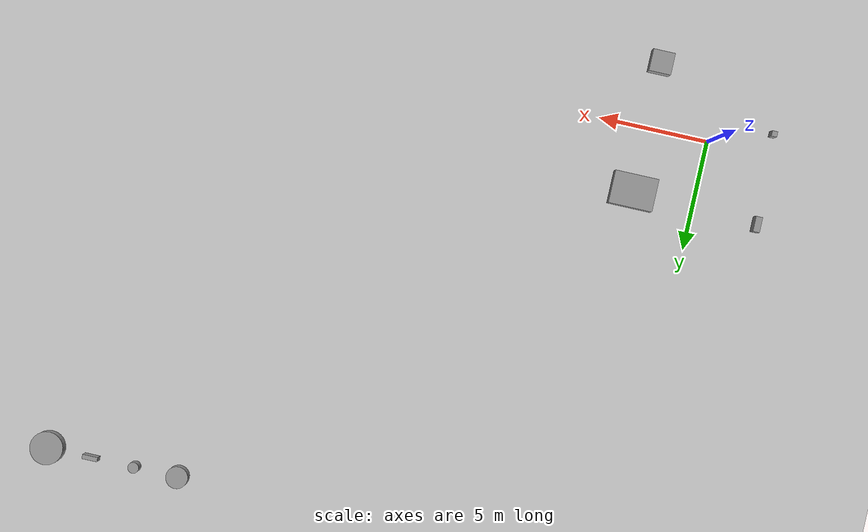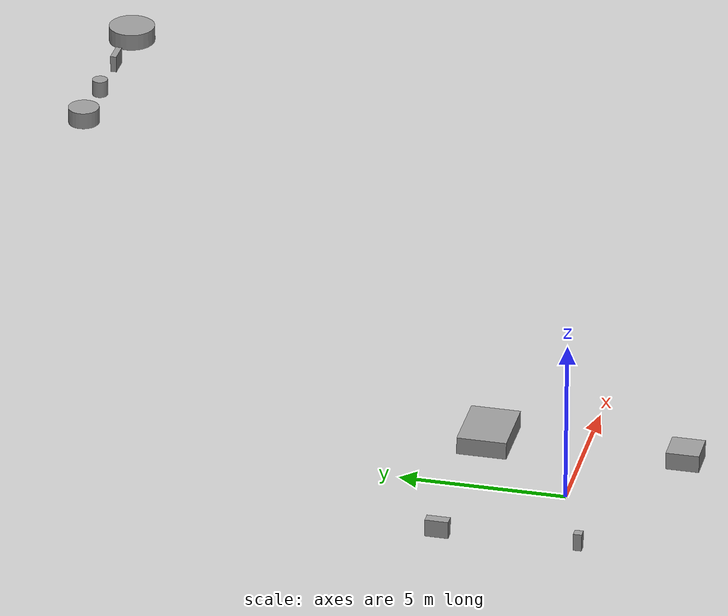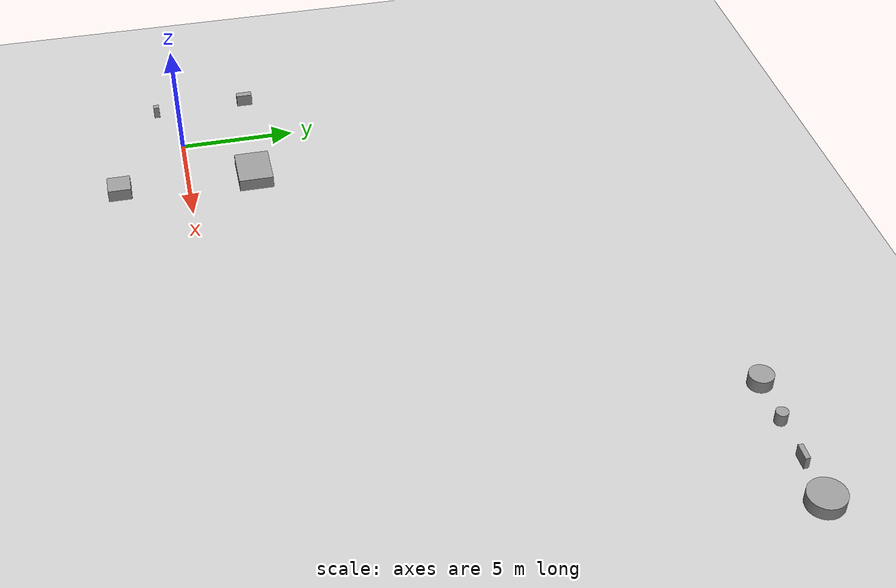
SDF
<sdf version="1.6">
 <world name="default">
  <plugin name="gazebo_ros_state" filename="libgazebo_ros_state.so">
   <ros><namespace>/gazebo</namespace></ros>
   <update_rate>1.0</update_rate>
  </plugin>
  <include><uri>model://ground_plane</uri></include>
  <include><uri>model://sun</uri></include>
  <scene><shadows>false</shadows></scene>
  <physics type="ode">
   <real_time_update_rate>2000.0</real_time_update_rate>
   <max_step_size>0.0025</max_step_size>
   <real_time_factor>5</real_time_factor>
   <ode>
    <solver>
     <type>quick</type>
     <iters>150</iters>
     <precon_iters>0</precon_iters>
     <sor>1.400000</sor>
     <use_dynamic_moi_rescaling>1</use_dynamic_moi_rescaling>
    </solver>
    <constraints>
     <cfm>0.00001</cfm>
     <erp>0.2</erp>
     <contact_max_correcting_vel>2000.000000</contact_max_correcting_vel>
     <contact_surface_layer>0.01000</contact_surface_layer>
    </constraints>
   </ode>
  </physics>
  <include><uri>model://obstacle1</uri></include>
  <include><uri>model://obstacle2</uri></include>
  <include><uri>model://obstacle3</uri></include>
  <include><uri>model://obstacle4</uri></include>
  <include><uri>model://obstacle5</uri></include>
  <include><uri>model://obstacle6</uri></include>
  <include><uri>model://obstacle7</uri></include>
  <include><uri>model://obstacle8</uri></include>
 </world>
</sdf>

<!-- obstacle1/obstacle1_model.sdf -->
<sdf version='1.6'>
  <model name='obstacle1'>
      <pose>2.86 -3.0 0 0 0 0</pose>
      <static>true</static>
      <link name='link'>
        <inertial>
          <mass>1</mass>
          <inertia>
            <ixx>0.166667</ixx>
            <ixy>0</ixy>
            <ixz>0</ixz>
            <iyy>0.166667</iyy>
            <iyz>0</iyz>
            <izz>0.166667</izz>
          </inertia>
          <pose>0 0 0 0 -0 0</pose>
        </inertial>
        <collision name='collision'>
          <geometry>
            <box>
              <size>1 1 1</size>
            </box>
          </geometry>
          <max_contacts>10</max_contacts>
          <surface>
            <contact>
              <ode/>
            </contact>
            <bounce/>
            <friction>
              <torsional>
                <ode/>
              </torsional>
              <ode/>
            </friction>
          </surface>
        </collision>
        <visual name='visual'>
          <geometry>
            <box>
              <size>1 1 1</size>
            </box>
          </geometry>
          <material>
            <script>
              <name>Gazebo/Grey</name>
              <uri>file://media/materials/scripts/gazebo.material</uri>
            </script>
          </material>
        </visual>
        <self_collide>0</self_collide>
        <enable_wind>0</enable_wind>
        <kinematic>0</kinematic>
      </link>
    </model>
</sdf>

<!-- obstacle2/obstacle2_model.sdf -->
<sdf version='1.6'>
  <model name='obstacle2'>
      <pose>-2.93 3.17 0 0 0 0</pose>
      <static>true</static>
      <link name='link'>
        <inertial>
          <mass>1</mass>
          <inertia>
            <ixx>0.166667</ixx>
            <ixy>0</ixy>
            <ixz>0</ixz>
            <iyy>0.166667</iyy>
            <iyz>0</iyz>
            <izz>0.166667</izz>
          </inertia>
          <pose>0 0 0 0 -0 0</pose>
        </inertial>
        <collision name='collision'>
          <geometry>
            <box>
              <size>0.3 0.7 1</size>
            </box>
          </geometry>
          <max_contacts>10</max_contacts>
          <surface>
            <contact>
              <ode/>
            </contact>
            <bounce/>
            <friction>
              <torsional>
                <ode/>
              </torsional>
              <ode/>
            </friction>
          </surface>
        </collision>
        <visual name='visual'>
          <geometry>
            <box>
              <size>0.3 0.7 1</size>
            </box>
          </geometry>
          <material>
            <script>
              <name>Gazebo/Grey</name>
              <uri>file://media/materials/scripts/gazebo.material</uri>
            </script>
          </material>
        </visual>
        <self_collide>0</self_collide>
        <enable_wind>0</enable_wind>
        <kinematic>0</kinematic>
      </link>
    </model>
</sdf>

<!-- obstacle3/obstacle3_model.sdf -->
<sdf version='1.6'>
  <model name='obstacle3'>
      <pose>-2.77 -0.96 0 0 0 0</pose>
      <static>true</static>
      <link name='link'>
        <inertial>
          <mass>1</mass>
          <inertia>
            <ixx>0.166667</ixx>
            <ixy>0</ixy>
            <ixz>0</ixz>
            <iyy>0.166667</iyy>
            <iyz>0</iyz>
            <izz>0.166667</izz>
          </inertia>
          <pose>0 0 0 0 -0 0</pose>
        </inertial>
        <collision name='collision'>
          <geometry>
            <box>
              <size>0.25 0.25 1</size>
            </box>
          </geometry>
          <max_contacts>10</max_contacts>
          <surface>
            <contact>
              <ode/>
            </contact>
            <bounce/>
            <friction>
              <torsional>
                <ode/>
              </torsional>
              <ode/>
            </friction>
          </surface>
        </collision>
        <visual name='visual'>
          <geometry>
            <box>
              <size>0.25 0.25 1</size>
            </box>
          </geometry>
          <material>
            <script>
              <name>Gazebo/Grey</name>
              <uri>file://media/materials/scripts/gazebo.material</uri>
            </script>
          </material>
        </visual>
        <self_collide>0</self_collide>
        <enable_wind>0</enable_wind>
        <kinematic>0</kinematic>
      </link>
    </model>
</sdf>

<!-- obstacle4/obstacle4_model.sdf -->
<sdf version='1.6'>
  <model name='obstacle4'>
      <pose>2.83 2.93 0 0 0 0</pose>
      <static>true</static>
      <link name='link'>
        <inertial>
          <mass>1</mass>
          <inertia>
            <ixx>0.166667</ixx>
            <ixy>0</ixy>
            <ixz>0</ixz>
            <iyy>0.166667</iyy>
            <iyz>0</iyz>
            <izz>0.166667</izz>
          </inertia>
          <pose>0 0 0 0 -0 0</pose>
        </inertial>
        <collision name='collision'>
          <geometry>
            <box>
              <size>2 1.5 1</size>
            </box>
          </geometry>
          <max_contacts>10</max_contacts>
          <surface>
            <contact>
              <ode/>
            </contact>
            <bounce/>
            <friction>
              <torsional>
                <ode/>
              </torsional>
              <ode/>
            </friction>
          </surface>
        </collision>
        <visual name='visual'>
          <geometry>
            <box>
              <size>2 1.5 1</size>
            </box>
          </geometry>
          <material>
            <script>
              <name>Gazebo/Grey</name>
              <uri>file://media/materials/scripts/gazebo.material</uri>
            </script>
          </material>
        </visual>
        <self_collide>0</self_collide>
        <enable_wind>0</enable_wind>
        <kinematic>0</kinematic>
      </link>
    </model>
</sdf>

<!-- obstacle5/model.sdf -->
<sdf version='1.6'>
  <model name='obstacle5'>
      <pose>20 20 0 0 0 0</pose>
      <link name='link'>
        <inertial>
          <mass>1</mass>
          <inertia>
            <ixx>0.145833</ixx>
            <ixy>0</ixy>
            <ixz>0</ixz>
            <iyy>0.145833</iyy>
            <iyz>0</iyz>
            <izz>0.125</izz>
          </inertia>
          <pose>0 0 0 0 -0 0</pose>
        </inertial>
        <collision name='collision'>
          <geometry>
            <cylinder>
              <radius>0.5</radius>
              <length>1</length>
            </cylinder>
          </geometry>
          <max_contacts>10</max_contacts>
          <surface>
            <contact>
              <ode/>
            </contact>
            <bounce/>
            <friction>
              <torsional>
                <ode/>
              </torsional>
              <ode/>
            </friction>
          </surface>
        </collision>
        <visual name='visual'>
          <geometry>
            <cylinder>
              <radius>0.5</radius>
              <length>1</length>
            </cylinder>
          </geometry>
          <material>
            <script>
              <name>Gazebo/Grey</name>
              <uri>file://media/materials/scripts/gazebo.material</uri>
            </script>
          </material>
        </visual>
        <self_collide>0</self_collide>
        <enable_wind>0</enable_wind>
        <kinematic>0</kinematic>
      </link>
    </model>
</sdf>

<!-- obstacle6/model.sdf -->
<sdf version='1.6'>
  <model name='obstacle6'>
      <pose>22 20 0 0 0 0</pose>
      <link name='link'>
        <inertial>
          <mass>1</mass>
          <inertia>
            <ixx>0.145833</ixx>
            <ixy>0</ixy>
            <ixz>0</ixz>
            <iyy>0.145833</iyy>
            <iyz>0</iyz>
            <izz>0.125</izz>
          </inertia>
          <pose>0 0 0 0 -0 0</pose>
        </inertial>
        <collision name='collision'>
          <geometry>
            <cylinder>
              <radius>0.25</radius>
              <length>1</length>
            </cylinder>
          </geometry>
          <max_contacts>10</max_contacts>
          <surface>
            <contact>
              <ode/>
            </contact>
            <bounce/>
            <friction>
              <torsional>
                <ode/>
              </torsional>
              <ode/>
            </friction>
          </surface>
        </collision>
        <visual name='visual'>
          <geometry>
            <cylinder>
              <radius>0.25</radius>
              <length>1</length>
            </cylinder>
          </geometry>
          <material>
            <script>
              <name>Gazebo/Grey</name>
              <uri>file://media/materials/scripts/gazebo.material</uri>
            </script>
          </material>
        </visual>
        <self_collide>0</self_collide>
        <enable_wind>0</enable_wind>
        <kinematic>0</kinematic>
      </link>
    </model>
</sdf>

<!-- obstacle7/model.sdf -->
<sdf version='1.6'>
  <model name='obstacle7'>
      <pose>24 20 0 0 0 0</pose>
      <link name='link'>
        <inertial>
          <mass>1</mass>
          <inertia>
            <ixx>0.166667</ixx>
            <ixy>0</ixy>
            <ixz>0</ixz>
            <iyy>0.166667</iyy>
            <iyz>0</iyz>
            <izz>0.166667</izz>
          </inertia>
          <pose>0 0 0 0 -0 0</pose>
        </inertial>
        <collision name='collision'>
          <geometry>
            <box>
              <size>0.7 0.2 1</size>
            </box>
          </geometry>
          <max_contacts>10</max_contacts>
          <surface>
            <contact>
              <ode/>
            </contact>
            <bounce/>
            <friction>
              <torsional>
                <ode/>
              </torsional>
              <ode/>
            </friction>
          </surface>
        </collision>
        <visual name='visual'>
          <geometry>
            <box>
              <size>0.7 0.2 1</size>
            </box>
          </geometry>
          <material>
            <script>
              <name>Gazebo/Grey</name>
              <uri>file://media/materials/scripts/gazebo.material</uri>
            </script>
          </material>
        </visual>
        <self_collide>0</self_collide>
        <enable_wind>0</enable_wind>
        <kinematic>0</kinematic>
      </link>
    </model>
</sdf>

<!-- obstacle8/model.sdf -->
<sdf version='1.6'>
  <model name='obstacle8'>
      <pose>26 20 0 0 0 0</pose>
      <link name='link'>
        <inertial>
          <mass>1</mass>
          <inertia>
            <ixx>0.145833</ixx>
            <ixy>0</ixy>
            <ixz>0</ixz>
            <iyy>0.145833</iyy>
            <iyz>0</iyz>
            <izz>0.125</izz>
          </inertia>
          <pose>0 0 0 0 -0 0</pose>
        </inertial>
        <collision name='collision'>
          <geometry>
            <cylinder>
              <radius>0.75</radius>
              <length>1</length>
            </cylinder>
          </geometry>
          <max_contacts>10</max_contacts>
          <surface>
            <contact>
              <ode/>
            </contact>
            <bounce/>
            <friction>
              <torsional>
                <ode/>
              </torsional>
              <ode/>
            </friction>
          </surface>
        </collision>
        <visual name='visual'>
          <geometry>
            <cylinder>
              <radius>0.75</radius>
              <length>1</length>
            </cylinder>
          </geometry>
          <material>
            <script>
              <name>Gazebo/Grey</name>
              <uri>file://media/materials/scripts/gazebo.material</uri>
            </script>
          </material>
        </visual>
        <self_collide>0</self_collide>
        <enable_wind>0</enable_wind>
        <kinematic>0</kinematic>
      </link>
    </model>
</sdf>
